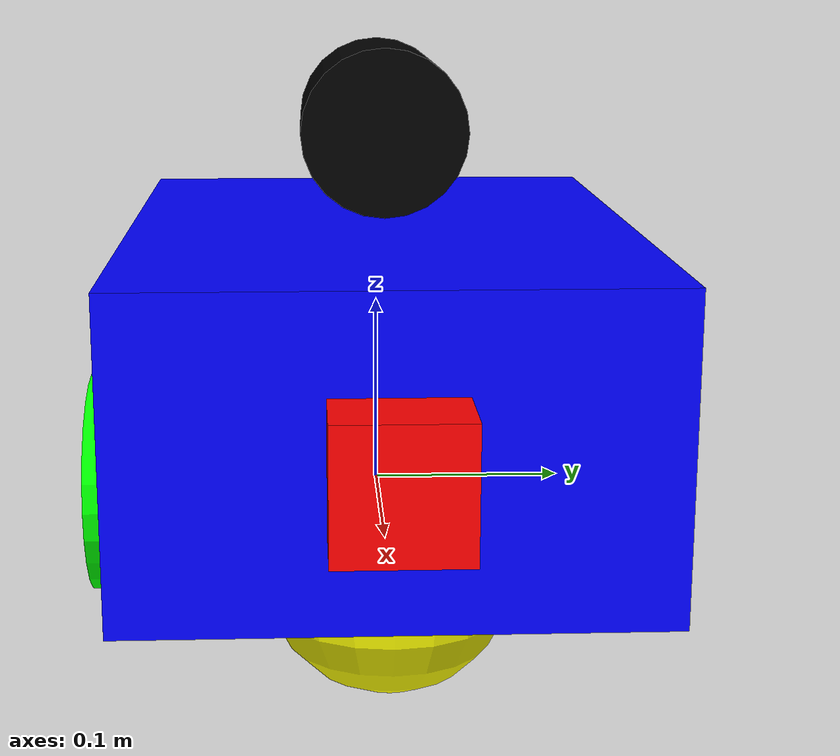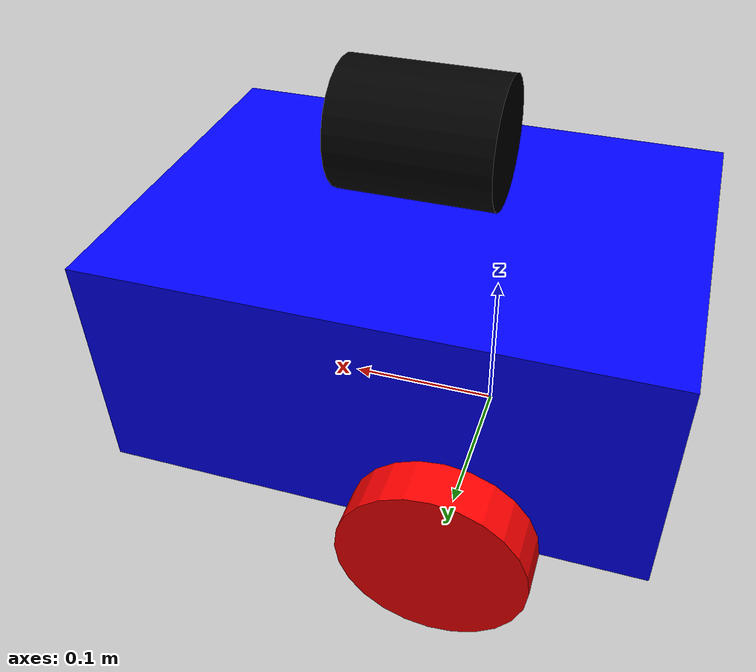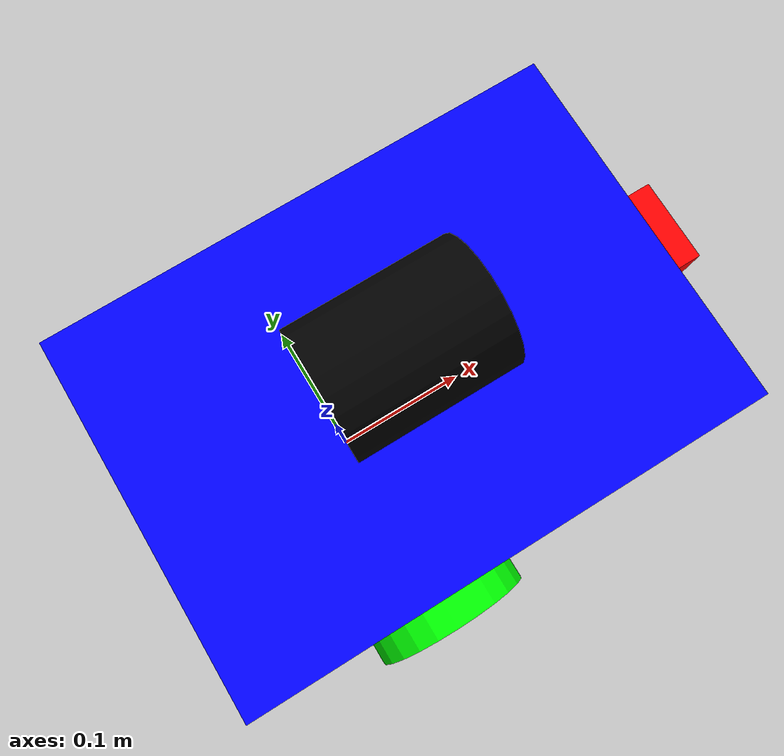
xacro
<?xml version="1.0"?>
<robot xmlns:xacro="http://www.ros.org/wiki/xacro" name="mobilebot">

  <!-- Material Definitions -->
  <material name="red"><color rgba="1 0 0 1"/></material>
  <material name="green"><color rgba="0 1 0 1"/></material>
  <material name="blue"><color rgba="0 0 1 1"/></material>
  <material name="yellow"><color rgba="1 1 0 1"/></material>
  <material name="black"><color rgba="0 0 0 1"/></material>

  <!-- Base Link (reference frame) -->
  <link name="base_link"/>

  <!-- Chassis -->
  <joint name="chassis_joint" type="fixed">
    <parent link="base_link"/>
    <child link="chassis"/>
    <origin xyz="-0.1 0 0" rpy="0 0 0"/>
  </joint>
  <link name="chassis">
    <visual>
      <origin xyz="0.15 0 0.075"/>
      <geometry><box size="0.35 0.25 0.15"/></geometry>
      <material name="blue"/>
    </visual>
    <collision>
      <origin xyz="0.15 0 0.075"/>
      <geometry><box size="0.35 0.25 0.15"/></geometry>
    </collision>
    <inertial>
      <mass value="2.0"/>
      <origin xyz="0.15 0 0.075"/>
      <inertia ixx="0.01" iyy="0.01" izz="0.01" ixy="0" ixz="0" iyz="0"/>
    </inertial>
  </link>

  <!-- Left Wheel -->
  <joint name="left_wheel_joint" type="continuous">
    <parent link="chassis"/>
    <child link="left_wheel"/>
    <origin xyz="0.1 0.14 0" rpy="-1.5708 0 0"/>
    <axis xyz="0 0 1"/>
  </joint>
  <link name="left_wheel">
    <visual>
      <geometry><cylinder radius="0.06" length="0.03"/></geometry>
      <material name="red"/>
    </visual>
    <collision>
      <geometry><cylinder radius="0.06" length="0.03"/></geometry>
    </collision>
    <inertial>
      <mass value="0.2"/>
      <origin xyz="0 0 0"/>
      <inertia ixx="0.0001" iyy="0.0001" izz="0.0001" ixy="0" ixz="0" iyz="0"/>
    </inertial>
  </link>

  <!-- Right Wheel -->
  <joint name="right_wheel_joint" type="continuous">
    <parent link="chassis"/>
    <child link="right_wheel"/>
    <origin xyz="0.1 -0.14 0" rpy="1.5708 0 0"/>
    <axis xyz="0 0 -1"/>
  </joint>
  <link name="right_wheel">
    <visual>
      <geometry><cylinder radius="0.06" length="0.03"/></geometry>
      <material name="green"/>
    </visual>
    <collision>
      <geometry><cylinder radius="0.06" length="0.03"/></geometry>
    </collision>
    <inertial>
      <mass value="0.2"/>
      <origin xyz="0 0 0"/>
      <inertia ixx="0.0001" iyy="0.0001" izz="0.0001" ixy="0" ixz="0" iyz="0"/>
    </inertial>
  </link>

  <!-- Caster Wheel (passive) -->
  <joint name="caster_joint" type="fixed">
    <parent link="chassis"/>
    <child link="caster"/>
    <origin xyz="0.24 0 0"/>
  </joint>
  <link name="caster">
    <visual>
      <geometry><sphere radius="0.06"/></geometry>
      <material name="yellow"/>
    </visual>
    <collision>
      <geometry><sphere radius="0.06"/></geometry>
    </collision>
    <inertial>
      <mass value="0.05"/>
      <inertia ixx="1e-5" iyy="1e-5" izz="1e-5" ixy="0" ixz="0" iyz="0"/>
    </inertial>
  </link>
  <gazebo reference="caster">
    <material>Gazebo/Black</material>
    <mu1 value="0.001"/><mu2 value="0.001"/>
  </gazebo>

  <!-- Front Camera -->
  <joint name="front_camera_joint" type="fixed">
    <parent link="chassis"/>
    <child link="front_camera_link"/>
    <origin xyz="0.325 0 0.075"/>
  </joint>
  <link name="front_camera_link">
    <visual>
      <geometry><box size="0.08 0.06 0.06"/></geometry>
      <material name="red"/>
    </visual>
    <collision>
      <geometry><box size="0.08 0.06 0.06"/></geometry>
    </collision>
    <inertial>
      <mass value="0.08"/>
      <inertia ixx="5e-5" iyy="5e-5" izz="5e-5" ixy="0" ixz="0" iyz="0"/>
    </inertial>
  </link>
  <gazebo reference="front_camera_link">
    <sensor name="front_camera" type="camera">
      <update_rate>30</update_rate>
      <visualize>true</visualize>
      <camera>
        <horizontal_fov>1.0472</horizontal_fov>
        <image>
          <width>640</width>
          <height>480</height>
          <format>R8G8B8</format>
        </image>
        <clip>
          <near>0.05</near>
          <far>50</far>
        </clip>
      </camera>
      <plugin name="gazebo_ros_camera" filename="libgazebo_ros_camera.so">
        <ros>
          <namespace>/</namespace>
        </ros>
        <frame_name>front_camera_link</frame_name>
      </plugin>
    </sensor>
  </gazebo>

  <!-- LIDAR Sensor -->
  <joint name="lidar_joint" type="fixed">
    <parent link="chassis"/>
    <child link="lidar_link"/>
    <origin xyz="0.15 0 0.20"/>
  </joint>
  <link name="lidar_link">
    <visual>
      <geometry><cylinder radius="0.04" length="0.1"/></geometry>
      <origin xyz="0 0 0" rpy="0 1.5708 0"/>
      <material name="black"/>
    </visual>
    <collision>
      <geometry><cylinder radius="0.04" length="0.1"/></geometry>
      <origin xyz="0 0 0" rpy="0 1.5708 0"/>
    </collision>
    <inertial>
      <mass value="0.1"/>
      <inertia ixx="1e-4" iyy="1e-4" izz="1e-4" ixy="0" ixz="0" iyz="0"/>
    </inertial>
  </link>
  <gazebo reference="lidar_link">
    <sensor name="lidar_sensor" type="ray">
      <update_rate>10</update_rate>
      <visualize>true</visualize>
      <ray>
        <scan>
          <horizontal>
            <samples>720</samples>
            <resolution>1</resolution>
            <min_angle>-3.14159</min_angle>
            <max_angle>3.14159</max_angle>
          </horizontal>
        </scan>
        <range>
          <min>0.12</min>
          <max>20.0</max>
          <resolution>0.01</resolution>
        </range>
        <noise>
          <type>gaussian</type>
          <mean>0.0</mean>
          <stddev>0.001</stddev>
        </noise>
      </ray>
      <plugin name="gazebo_ros_ray_sensor" filename="libgazebo_ros_ray_sensor.so">
        <ros>
          <namespace>/</namespace>
          <remapping>scan:=/scan</remapping>
        </ros>
        <output_type>sensor_msgs/LaserScan</output_type>
        <frame_name>lidar_link</frame_name>
      </plugin>
    </sensor>
  </gazebo>

  <!-- IMU Sensor -->
  <joint name="imu_joint" type="fixed">
    <parent link="chassis"/>
    <child link="imu_link"/>
    <origin xyz="0 0 0.1" rpy="0 0 0"/>
  </joint>
  <link name="imu_link">
    <inertial>
      <mass value="0.01"/>
      <origin xyz="0 0 0"/>
      <inertia ixx="0.0001" iyy="0.0001" izz="0.0001" ixy="0" ixz="0" iyz="0"/>
    </inertial>
  </link>
  <gazebo reference="imu_link">
    <sensor name="imu_sensor" type="imu">
      <update_rate>50</update_rate>
      <always_on>true</always_on>
      <visualize>true</visualize>
      <imu>
        <angular_velocity>
          <noise type="gaussian">
            <mean>0.0</mean>
            <stddev>0.0001</stddev>
          </noise>
        </angular_velocity>
        <linear_acceleration>
          <noise type="gaussian">
            <mean>0.0</mean>
            <stddev>0.0001</stddev>
          </noise>
        </linear_acceleration>
      </imu>
      <plugin name="gazebo_ros_imu" filename="libgazebo_ros_imu.so">
        <ros>
          <namespace>/</namespace>
        </ros>
        <frame_name>imu_link</frame_name>
      </plugin>
    </sensor>
  </gazebo>

</robot>
